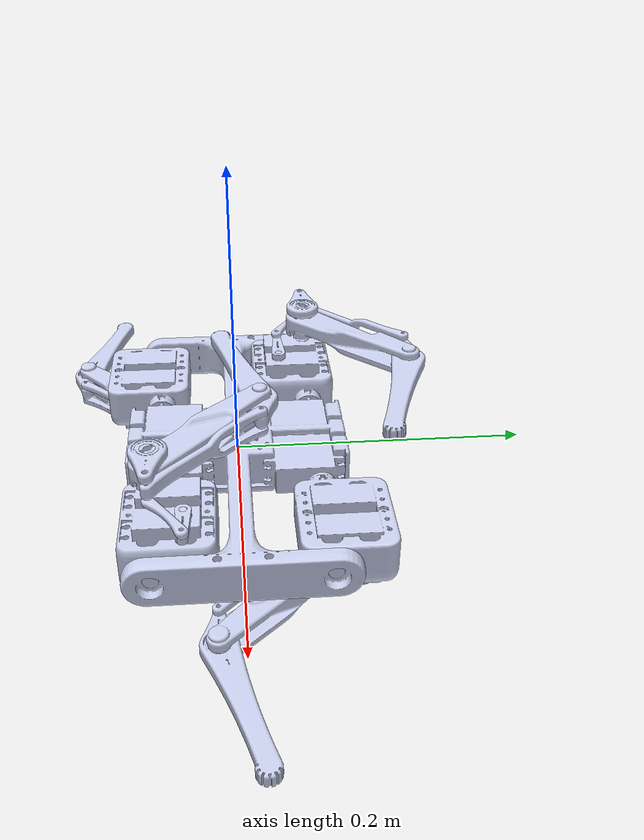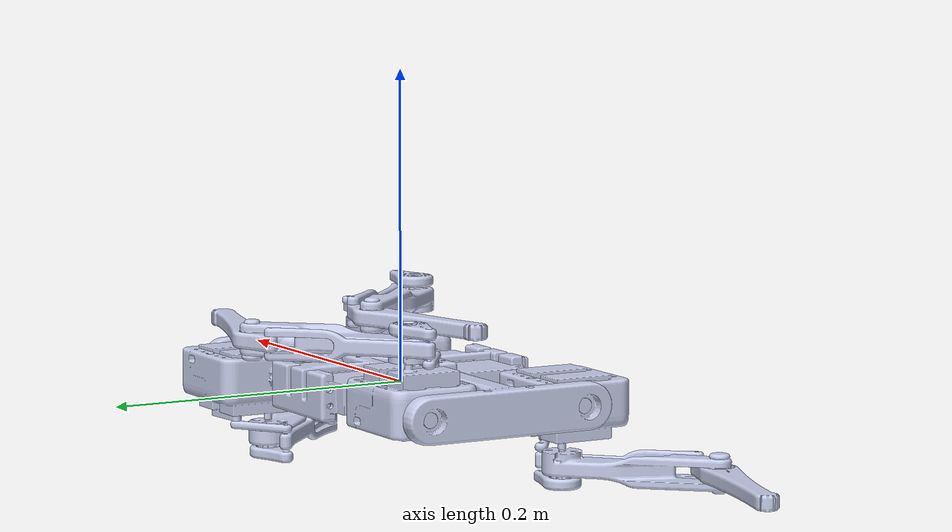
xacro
<?xml version="1.0" encoding="utf-8"?>

<robot xmlns:xacro="http://www.ros.org/wiki/xacro" name="vettar">
  <xacro:arg name="simulation_mode" default="false"/>
  <xacro:property name="is_sim" value="$(arg simulation_mode)"/>
  <link
    name="base_link">
    <inertial>
      <origin
        xyz="2.35110972218733E-08 -4.49082036696469E-08 -0.000139979272181373"
        rpy="0 0 0" />
      <mass
        value="0.396679023415945" />
      <inertia
        ixx="0.000363746686904449"
        ixy="-9.76609071073347E-09"
        ixz="3.48480589918157E-12"
        iyy="0.00104522627187434"
        iyz="-4.57941235308133E-10"
        izz="0.0013581782694226" />
    </inertial>
    <visual>
      <origin
        xyz="0 0 0"
        rpy="0 0 0" />
      <geometry>
        <mesh
          filename="package://vettar_description/meshes/base_link.STL" />
      </geometry>
      <material
        name="">
        <color
          rgba="0.792156862745098 0.819607843137255 0.933333333333333 1" />
      </material>
    </visual>
    <collision>
      <origin
        xyz="0 0 0"
        rpy="0 0 0" />
      <geometry>
        <mesh
          filename="package://vettar_description/meshes/base_link.STL" />
      </geometry>
    </collision>
  </link>
  <link
    name="shoulder_F_L">
    <inertial>
      <origin
        xyz="0.0466819869554319 0.00398419067271394 0.00997792256330394"
        rpy="0 0 0" />
      <mass
        value="0.119203480699899" />
      <inertia
        ixx="4.49008647458163E-05"
        ixy="-2.02804766608705E-08"
        ixz="-3.45414265562375E-06"
        iyy="4.39339436760174E-05"
        iyz="-3.33916966792789E-08"
        izz="2.39881913565821E-05" />
    </inertial>
    <visual>
      <origin
        xyz="0 0 0"
        rpy="0 0 0" />
      <geometry>
        <mesh
          filename="package://vettar_description/meshes/shoulder_F_L.STL" />
      </geometry>
      <material
        name="">
        <color
          rgba="0.792156862745098 0.819607843137255 0.933333333333333 1" />
      </material>
    </visual>
    <collision>
      <origin
        xyz="0 0 0"
        rpy="0 0 0" />
      <geometry>
        <mesh
          filename="package://vettar_description/meshes/shoulder_F_L.STL" />
      </geometry>
    </collision>
  </link>
  <joint
    name="F_L_0"
    type="revolute">
    <origin
      xyz="0.04685 0.05455 -5E-05"
      rpy="-1.5708 0 0" />
    <parent
      link="base_link" />
    <child
      link="shoulder_F_L" />
    <axis
      xyz="1 0 0" />
    <limit
      lower="0"
      upper="3.1416"
      effort="0"
      velocity="0" />
  </joint>
  <link
    name="thighs_F_L">
    <inertial>
      <origin
        xyz="0.0307867646905471 -0.000461376921627524 -0.030805340221158"
        rpy="0 0 0" />
      <mass
        value="0.0272931996215248" />
      <inertia
        ixx="1.40238605835704E-05"
        ixy="-2.68315513109657E-07"
        ixz="1.22583414772541E-05"
        iyy="2.63265482672728E-05"
        iyz="2.68517605735526E-07"
        izz="1.39166912790042E-05" />
    </inertial>
    <visual>
      <origin
        xyz="0 0 0"
        rpy="0 0 0" />
      <geometry>
        <mesh
          filename="package://vettar_description/meshes/thighs_F_L.STL" />
      </geometry>
      <material
        name="">
        <color
          rgba="0.792156862745098 0.819607843137255 0.933333333333333 1" />
      </material>
    </visual>
    <collision>
      <origin
        xyz="0 0 0"
        rpy="0 0 0" />
      <geometry>
        <mesh
          filename="package://vettar_description/meshes/thighs_F_L.STL" />
      </geometry>
    </collision>
  </link>
  <joint
    name="F_L_1"
    type="revolute">
    <origin
      xyz="0.0322 0.0423 0"
      rpy="0 0 0" />
    <parent
      link="shoulder_F_L" />
    <child
      link="thighs_F_L" />
    <axis
      xyz="0 1 0" />
    <limit
      lower="0"
      upper="3.1416"
      effort="0"
      velocity="0" />
  </joint>
  <link
    name="calf_F_L">
    <inertial>
      <origin
        xyz="0.0101406960018604 5.12585711612695E-05 -0.0334060796974647"
        rpy="0 0 0" />
      <mass
        value="0.0172535804140555" />
      <inertia
        ixx="1.77604626883055E-05"
        ixy="8.61708375886723E-09"
        ixz="4.41637781525403E-06"
        iyy="1.92140238293717E-05"
        iyz="-2.87034102494065E-08"
        izz="1.71187663900808E-06" />
    </inertial>
    <visual>
      <origin
        xyz="0 0 0"
        rpy="0 0 0" />
      <geometry>
        <mesh
          filename="package://vettar_description/meshes/calf_F_L.STL" />
      </geometry>
      <material
        name="">
        <color
          rgba="0.792156862745098 0.819607843137255 0.933333333333333 1" />
      </material>
    </visual>
    <collision>
      <origin
        xyz="0 0 0"
        rpy="0 0 0" />
      <geometry>
        <mesh
          filename="package://vettar_description/meshes/calf_F_L.STL" />
      </geometry>
    </collision>
  </link>
  <joint
    name="thighs_to_calf_F_L"
    type="continuous">
    <origin
      xyz="0.070711 0 -0.070711"
      rpy="0 -1.5708 0" />
    <parent
      link="thighs_F_L" />
    <child
      link="calf_F_L" />
    <axis
      xyz="0 1 0" />
  </joint>
  <link
    name="servo_arm_F_L">
    <inertial>
      <origin
        xyz="0 1.38777878078145E-17 0.0105381418028458"
        rpy="0 0 0" />
      <mass
        value="0.000975344106993151" />
      <inertia
        ixx="7.54540735330726E-08"
        ixy="1.16739122284923E-24"
        ixz="-2.5771099278853E-23"
        iyy="8.00240618361575E-08"
        iyz="3.31263426977485E-23"
        izz="7.84485504908246E-09" />
    </inertial>
    <visual>
      <origin
        xyz="0 0 0"
        rpy="0 0 0" />
      <geometry>
        <mesh
          filename="package://vettar_description/meshes/servo_arm_F_L.STL" />
      </geometry>
      <material
        name="">
        <color
          rgba="0.792156862745098 0.819607843137255 0.933333333333333 1" />
      </material>
    </visual>
    <collision>
      <origin
        xyz="0 0 0"
        rpy="0 0 0" />
      <geometry>
        <mesh
          filename="package://vettar_description/meshes/servo_arm_F_L.STL" />
      </geometry>
    </collision>
  </link>
  <joint
    name="F_L_2"
    type="revolute">
    <origin
      xyz="0.06205 0.02905 0.0204"
      rpy="0 -1.5708 0" />
    <parent
      link="shoulder_F_L" />
    <child
      link="servo_arm_F_L" />
    <axis
      xyz="0 1 0" />
    <limit
      lower="0"
      upper="3.1416"
      effort="0"
      velocity="0" />
  </joint>
  <link
    name="calf_ctrl_link_1_F_L">
    <inertial>
      <origin
        xyz="-0.018075 1.38777878078145E-17 0.000774877828140577"
        rpy="0 0 0" />
      <mass
        value="0.00111225029871878" />
      <inertia
        ixx="5.72356644536731E-09"
        ixy="1.42431891656477E-23"
        ixz="-1.23663501576677E-22"
        iyy="1.85407386292481E-07"
        iyz="7.68745190348468E-25"
        izz="1.8357729196152E-07" />
    </inertial>
    <visual>
      <origin
        xyz="0 0 0"
        rpy="0 0 0" />
      <geometry>
        <mesh
          filename="package://vettar_description/meshes/calf_ctrl_link_1_F_L.STL" />
      </geometry>
      <material
        name="">
        <color
          rgba="0.792156862745098 0.819607843137255 0.933333333333333 1" />
      </material>
    </visual>
    <collision>
      <origin
        xyz="0 0 0"
        rpy="0 0 0" />
      <geometry>
        <mesh
          filename="package://vettar_description/meshes/calf_ctrl_link_1_F_L.STL" />
      </geometry>
    </collision>
  </link>
  <joint
    name="servo_arm_to_calf_ctrl_link_1_F_L"
    type="revolute">
    <origin
      xyz="0 0.00475 0.025"
      rpy="0 0.9724 0" />
    <parent
      link="servo_arm_F_L" />
    <child
      link="calf_ctrl_link_1_F_L" />
    <axis
      xyz="0 1 0" />
    <limit
      lower="0"
      upper="3.1416"
      effort="0"
      velocity="0" />
     <mimic
      joint="F_L_2"
      multiplier="-1"
      offset="0" />
  </joint>
  <link
    name="calf_ctrl_b_F_L">
    <inertial>
      <origin
        xyz="-4.85722573273506E-17 3.20640684062512E-05 0.00688666553553138"
        rpy="0 0 0" />
      <mass
        value="0.00354028959618972" />
      <inertia
        ixx="3.45528486612269E-07"
        ixy="-1.84808305160043E-22"
        ixz="1.46369065700323E-20"
        iyy="4.52480557794333E-07"
        iyz="-3.32682143979103E-09"
        izz="1.30553485579809E-07" />
    </inertial>
    <visual>
      <origin
        xyz="0 0 0"
        rpy="0 0 0" />
      <geometry>
        <mesh
          filename="package://vettar_description/meshes/calf_ctrl_b_F_L.STL" />
      </geometry>
      <material
        name="">
        <color
          rgba="0.792156862745098 0.819607843137255 0.933333333333333 1" />
      </material>
    </visual>
    <collision>
      <origin
        xyz="0 0 0"
        rpy="0 0 0" />
      <geometry>
        <mesh
          filename="package://vettar_description/meshes/calf_ctrl_b_F_L.STL" />
      </geometry>
    </collision>
  </link>
  <joint
    name="shoulder_to_calf_ctrl_b_F_L"
    type="revolute">
    <origin
      xyz="0.0322 0.0523 0"
      rpy="0 -1.5708 0" />
    <parent
      link="shoulder_F_L" />
    <child
      link="calf_ctrl_b_F_L" />
    <axis
      xyz="0 1 0" />
    <limit
      lower="0"
      upper="3.1416"
      effort="0"
      velocity="0" />
    <mimic
      joint="F_L_2"
      multiplier="1"
      offset="0" />
  </joint>
  <link
    name="calf_ctrl_link_2_F_L">
    <inertial>
      <origin
        xyz="0.00111901337001399 2.09060393996374E-10 -0.0500778792496259"
        rpy="0 0 0" />
      <mass
        value="0.00561911163130325" />
      <inertia
        ixx="5.89454562373125E-06"
        ixy="6.73552520504852E-15"
        ixz="6.42821435707171E-10"
        iyy="5.75704319182989E-06"
        iyz="-1.84959192503532E-15"
        izz="1.70411118036785E-07" />
    </inertial>
    <visual>
      <origin
        xyz="0 0 0"
        rpy="0 0 0" />
      <geometry>
        <mesh
          filename="package://vettar_description/meshes/calf_ctrl_link_2_F_L.STL" />
      </geometry>
      <material
        name="">
        <color
          rgba="0.792156862745098 0.819607843137255 0.933333333333333 1" />
      </material>
    </visual>
    <collision>
      <origin
        xyz="0 0 0"
        rpy="0 0 0" />
      <geometry>
        <mesh
          filename="package://vettar_description/meshes/calf_ctrl_link_2_F_L.STL" />
      </geometry>
    </collision>
  </link>
  <joint
    name="calf_ctrl_b_to_link_2_F_L"
    type="continuous">
    <origin
      xyz="0 -0.010003 0.025"
      rpy="0 0.7854 0" />
    <parent
      link="calf_ctrl_b_F_L" />
    <child
      link="calf_ctrl_link_2_F_L" />
    <axis
      xyz="0 1 0" />
  </joint>
  <link
    name="shoulder_F_R">
    <inertial>
      <origin
        xyz="0.0467094731756891 -0.00398417940754411 0.00997767995559429"
        rpy="0 0 0" />
      <mass
        value="0.11920530580515" />
      <inertia
        ixx="4.49016149267523E-05"
        ixy="2.03939054156098E-08"
        ixz="-3.45413247787102E-06"
        iyy="4.39346233462038E-05"
        iyz="3.31134798240669E-08"
        izz="2.39882253835948E-05" />
    </inertial>
    <visual>
      <origin
        xyz="0 0 0"
        rpy="0 0 0" />
      <geometry>
        <mesh
          filename="package://vettar_description/meshes/shoulder_F_R.STL" />
      </geometry>
      <material
        name="">
        <color
          rgba="0.792156862745098 0.819607843137255 0.933333333333333 1" />
      </material>
    </visual>
    <collision>
      <origin
        xyz="0 0 0"
        rpy="0 0 0" />
      <geometry>
        <mesh
          filename="package://vettar_description/meshes/shoulder_F_R.STL" />
      </geometry>
    </collision>
  </link>
  <joint
    name="F_R_3"
    type="revolute">
    <origin
      xyz="0.04685 -0.05455 -5E-05"
      rpy="-1.5708 0 0" />
    <parent
      link="base_link" />
    <child
      link="shoulder_F_R" />
    <axis
      xyz="1 0 0" />
    <limit
      lower="0"
      upper="3.1416"
      effort="0"
      velocity="0" />
  </joint>
  <link
    name="thighs_F_R">
    <inertial>
      <origin
        xyz="-0.0307867726045708 0.000461376972766436 0.0308053238078066"
        rpy="0 0 0" />
      <mass
        value="0.0272931837872823" />
      <inertia
        ixx="1.40238518752997E-05"
        ixy="-2.68316564692751E-07"
        ixz="1.22583471675323E-05"
        iyy="2.63265110795453E-05"
        iyz="2.68519518042869E-07"
        izz="1.39166609155692E-05" />
    </inertial>
    <visual>
      <origin
        xyz="0 0 0"
        rpy="0 0 0" />
      <geometry>
        <mesh
          filename="package://vettar_description/meshes/thighs_F_R.STL" />
      </geometry>
      <material
        name="">
        <color
          rgba="0.792156862745098 0.819607843137255 0.933333333333333 1" />
      </material>
    </visual>
    <collision>
      <origin
        xyz="0 0 0"
        rpy="0 0 0" />
      <geometry>
        <mesh
          filename="package://vettar_description/meshes/thighs_F_R.STL" />
      </geometry>
    </collision>
  </link>
  <joint
    name="F_R_4"
    type="revolute">
    <origin
      xyz="0.03225 -0.0423 0"
      rpy="0 0 0" />
    <parent
      link="shoulder_F_R" />
    <child
      link="thighs_F_R" />
    <axis
      xyz="0 -1 0" />
    <limit
      lower="0"
      upper="3.1416"
      effort="0"
      velocity="0" />
  </joint>
  <link
    name="calf_F_R">
    <inertial>
      <origin
        xyz="0.010140696002164 -5.12587645191687E-05 -0.0334060796979923"
        rpy="0 0 0" />
      <mass
        value="0.0172535804143419" />
      <inertia
        ixx="1.77604626882643E-05"
        ixy="-8.61702362435681E-09"
        ixz="4.41637781537991E-06"
        iyy="1.92140238297111E-05"
        iyz="2.87032981478641E-08"
        izz="1.71187663873301E-06" />
    </inertial>
    <visual>
      <origin
        xyz="0 0 0"
        rpy="0 0 0" />
      <geometry>
        <mesh
          filename="package://vettar_description/meshes/calf_F_R.STL" />
      </geometry>
      <material
        name="">
        <color
          rgba="0.792156862745098 0.819607843137255 0.933333333333333 1" />
      </material>
    </visual>
    <collision>
      <origin
        xyz="0 0 0"
        rpy="0 0 0" />
      <geometry>
        <mesh
          filename="package://vettar_description/meshes/calf_F_R.STL" />
      </geometry>
    </collision>
  </link>
  <joint
    name="thighs_to_calf_F_R"
    type="continuous">
    <origin
      xyz="-0.070711 0 0.070711"
      rpy="0 1.5708 0" />
    <parent
      link="thighs_F_R" />
    <child
      link="calf_F_R" />
    <axis
      xyz="0 -1 0" />
  </joint>
  <link
    name="servo_arm_F_R">
    <inertial>
      <origin
        xyz="-6.93889390390723E-18 2.77555756156289E-17 0.0105381418028457"
        rpy="0 0 0" />
      <mass
        value="0.000975344106993152" />
      <inertia
        ixx="7.54540735330729E-08"
        ixy="-1.08761864879061E-24"
        ixz="5.12597524809289E-23"
        iyy="8.00240618361578E-08"
        iyz="-6.10438430796542E-23"
        izz="7.84485504908247E-09" />
    </inertial>
    <visual>
      <origin
        xyz="0 0 0"
        rpy="0 0 0" />
      <geometry>
        <mesh
          filename="package://vettar_description/meshes/servo_arm_F_R.STL" />
      </geometry>
      <material
        name="">
        <color
          rgba="0.792156862745098 0.819607843137255 0.933333333333333 1" />
      </material>
    </visual>
    <collision>
      <origin
        xyz="0 0 0"
        rpy="0 0 0" />
      <geometry>
        <mesh
          filename="package://vettar_description/meshes/servo_arm_F_R.STL" />
      </geometry>
    </collision>
  </link>
  <joint
    name="F_R_5"
    type="revolute">
    <origin
      xyz="0.0621 -0.02905 0.0204"
      rpy="0 1.5708 0" />
    <parent
      link="shoulder_F_R" />
    <child
      link="servo_arm_F_R" />
    <axis
      xyz="0 -1 0" />
    <limit
      lower="0"
      upper="3.1416"
      effort="0"
      velocity="0" />
  </joint>
  <link
    name="calf_ctrl_link_1_F_R">
    <inertial>
      <origin
        xyz="-0.018075 -2.77555756156289E-17 0.000774877828140508"
        rpy="0 0 0" />
      <mass
        value="0.00111225029871878" />
      <inertia
        ixx="5.72356644536755E-09"
        ixy="-2.26003951040413E-23"
        ixz="1.13737334226045E-23"
        iyy="1.85407386292482E-07"
        iyz="-2.02406696460792E-24"
        izz="1.8357729196152E-07" />
    </inertial>
    <visual>
      <origin
        xyz="0 0 0"
        rpy="0 0 0" />
      <geometry>
        <mesh
          filename="package://vettar_description/meshes/calf_ctrl_link_1_F_R.STL" />
      </geometry>
      <material
        name="">
        <color
          rgba="0.792156862745098 0.819607843137255 0.933333333333333 1" />
      </material>
    </visual>
    <collision>
      <origin
        xyz="0 0 0"
        rpy="0 0 0" />
      <geometry>
        <mesh
          filename="package://vettar_description/meshes/calf_ctrl_link_1_F_R.STL" />
      </geometry>
    </collision>
  </link>
  <joint
    name="servo_arm_to_calf_ctrl_link_1_F_R"
    type="revolute">
    <origin
      xyz="0 -0.00475 0.025"
      rpy="0 -2.1734 0" />
    <parent
      link="servo_arm_F_R" />
    <child
      link="calf_ctrl_link_1_F_R" />
    <axis
      xyz="0 -1 0" />
    <limit
      lower="0"
      upper="3.1416"
      effort="0"
      velocity="0" />
    <mimic
      joint="F_R_5"
      multiplier="-1"
      offset="0" />
  </joint>
  <link
    name="calf_ctrl_b_F_R">
    <inertial>
      <origin
        xyz="3.05311331771918E-16 -3.20640684061402E-05 0.00688666553553122"
        rpy="0 0 0" />
      <mass
        value="0.00354028959618971" />
      <inertia
        ixx="3.45528486612264E-07"
        ixy="-7.8896407257504E-24"
        ixz="-6.91787917647197E-21"
        iyy="4.52480557794311E-07"
        iyz="3.32682143979124E-09"
        izz="1.30553485579793E-07" />
    </inertial>
    <visual>
      <origin
        xyz="0 0 0"
        rpy="0 0 0" />
      <geometry>
        <mesh
          filename="package://vettar_description/meshes/calf_ctrl_b_F_R.STL" />
      </geometry>
      <material
        name="">
        <color
          rgba="0.792156862745098 0.819607843137255 0.933333333333333 1" />
      </material>
    </visual>
    <collision>
      <origin
        xyz="0 0 0"
        rpy="0 0 0" />
      <geometry>
        <mesh
          filename="package://vettar_description/meshes/calf_ctrl_b_F_R.STL" />
      </geometry>
    </collision>
  </link>
  <joint
    name="shoulder_to_calf_ctrl_b_F_R"
    type="revolute">
    <origin
      xyz="0.03225 -0.0523 0"
      rpy="0 1.5708 0" />
    <parent
      link="shoulder_F_R" />
    <child
      link="calf_ctrl_b_F_R" />
    <axis
      xyz="0 -1 0" />
    <limit
      lower="0"
      upper="3.1416"
      effort="0"
      velocity="0" />
    <mimic
      joint="F_R_5"
      multiplier="1"
      offset="0" />
  </joint>
  <link
    name="calf_ctrl_link_2_F_R">
    <inertial>
      <origin
        xyz="0.0011190133700149 2.09061323808157E-10 -0.0500778792496255"
        rpy="0 0 0" />
      <mass
        value="0.00561911163130325" />
      <inertia
        ixx="5.89454562373125E-06"
        ixy="6.73552516750252E-15"
        ixz="6.42821435709857E-10"
        iyy="5.75704319182989E-06"
        iyz="-1.84959266424862E-15"
        izz="1.7041111803679E-07" />
    </inertial>
    <visual>
      <origin
        xyz="0 0 0"
        rpy="0 0 0" />
      <geometry>
        <mesh
          filename="package://vettar_description/meshes/calf_ctrl_link_2_F_R.STL" />
      </geometry>
      <material
        name="">
        <color
          rgba="0.792156862745098 0.819607843137255 0.933333333333333 1" />
      </material>
    </visual>
    <collision>
      <origin
        xyz="0 0 0"
        rpy="0 0 0" />
      <geometry>
        <mesh
          filename="package://vettar_description/meshes/calf_ctrl_link_2_F_R.STL" />
      </geometry>
    </collision>
  </link>
  <joint
    name="calf_ctrl_b_to_link_2_F_R"
    type="continuous">
    <origin
      xyz="0 0.010227 0.025"
      rpy="0 0.7854 0" />
    <parent
      link="calf_ctrl_b_F_R" />
    <child
      link="calf_ctrl_link_2_F_R" />
    <axis
      xyz="0 -1 0" />
  </joint>
  <link
    name="shoulder_B_L">
    <inertial>
      <origin
        xyz="-0.0466815369109793 0.00398417944209506 0.00997768017568306"
        rpy="0 0 0" />
      <mass
        value="0.119205302366461" />
      <inertia
        ixx="4.4901614342157E-05"
        ixy="2.03938148595843E-08"
        ixz="3.45413063891719E-06"
        iyy="4.3934620230579E-05"
        iyz="-3.31136750285268E-08"
        izz="2.39882229480932E-05" />
    </inertial>
    <visual>
      <origin
        xyz="0 0 0"
        rpy="0 0 0" />
      <geometry>
        <mesh
          filename="package://vettar_description/meshes/shoulder_B_L.STL" />
      </geometry>
      <material
        name="">
        <color
          rgba="0.792156862745098 0.819607843137255 0.933333333333333 1" />
      </material>
    </visual>
    <collision>
      <origin
        xyz="0 0 0"
        rpy="0 0 0" />
      <geometry>
        <mesh
          filename="package://vettar_description/meshes/shoulder_B_L.STL" />
      </geometry>
    </collision>
  </link>
  <joint
    name="B_L_6"
    type="revolute">
    <origin
      xyz="-0.04685 0.05455 -5E-05"
      rpy="1.5708 0 0" />
    <parent
      link="base_link" />
    <child
      link="shoulder_B_L" />
    <axis
      xyz="-1 0 0" />
    <limit
      lower="0"
      upper="3.1416"
      effort="0"
      velocity="0" />
  </joint>
  <link
    name="thighs_B_L">
    <inertial>
      <origin
        xyz="0.030786764690059 -0.000461376921627038 -0.0308053402205603"
        rpy="0 0 0" />
      <mass
        value="0.0272931996215124" />
      <inertia
        ixx="1.40238498403544E-05"
        ixy="-2.68315513164588E-07"
        ixz="1.22583467619844E-05"
        iyy="2.63265267810395E-05"
        iyz="2.68517605812552E-07"
        izz="1.39166805359863E-05" />
    </inertial>
    <visual>
      <origin
        xyz="0 0 0"
        rpy="0 0 0" />
      <geometry>
        <mesh
          filename="package://vettar_description/meshes/thighs_B_L.STL" />
      </geometry>
      <material
        name="">
        <color
          rgba="0.792156862745098 0.819607843137255 0.933333333333333 1" />
      </material>
    </visual>
    <collision>
      <origin
        xyz="0 0 0"
        rpy="0 0 0" />
      <geometry>
        <mesh
          filename="package://vettar_description/meshes/thighs_B_L.STL" />
      </geometry>
    </collision>
  </link>
  <joint
    name="B_L_7"
    type="revolute">
    <origin
      xyz="-0.06205 0.0423 0"
      rpy="0 0 0" />
    <parent
      link="shoulder_B_L" />
    <child
      link="thighs_B_L" />
    <axis
      xyz="0 1 0" />
    <limit
      lower="0"
      upper="3.1416"
      effort="0"
      velocity="0" />
  </joint>
  <link
    name="calf_B_L">
    <inertial>
      <origin
        xyz="0.0101406960018602 5.12585711612001E-05 -0.0334060796974651"
        rpy="0 0 0" />
      <mass
        value="0.0172535804140553" />
      <inertia
        ixx="1.77604626883045E-05"
        ixy="8.6170837589074E-09"
        ixz="4.41637781525641E-06"
        iyy="1.92140238293725E-05"
        iyz="-2.87034102494069E-08"
        izz="1.71187663900993E-06" />
    </inertial>
    <visual>
      <origin
        xyz="0 0 0"
        rpy="0 0 0" />
      <geometry>
        <mesh
          filename="package://vettar_description/meshes/calf_B_L.STL" />
      </geometry>
      <material
        name="">
        <color
          rgba="0.792156862745098 0.819607843137255 0.933333333333333 1" />
      </material>
    </visual>
    <collision>
      <origin
        xyz="0 0 0"
        rpy="0 0 0" />
      <geometry>
        <mesh
          filename="package://vettar_description/meshes/calf_B_L.STL" />
      </geometry>
    </collision>
  </link>
  <joint
    name="thighs_to_calf_B_L"
    type="continuous">
    <origin
      xyz="0.070711 0 -0.070711"
      rpy="0 -1.5708 0" />
    <parent
      link="thighs_B_L" />
    <child
      link="calf_B_L" />
    <axis
      xyz="0 1 0" />
  </joint>
  <link
    name="servo_arm_B_L">
    <inertial>
      <origin
        xyz="3.46944695195361E-18 0 0.0105381418028457"
        rpy="0 0 0" />
      <mass
        value="0.000975344106993152" />
      <inertia
        ixx="7.54540735330728E-08"
        ixy="5.61001260621498E-24"
        ixz="-2.51863031739294E-23"
        iyy="8.00240618361577E-08"
        iyz="-1.14098922559324E-23"
        izz="7.84485504908248E-09" />
    </inertial>
    <visual>
      <origin
        xyz="0 0 0"
        rpy="0 0 0" />
      <geometry>
        <mesh
          filename="package://vettar_description/meshes/servo_arm_B_L.STL" />
      </geometry>
      <material
        name="">
        <color
          rgba="0.792156862745098 0.819607843137255 0.933333333333333 1" />
      </material>
    </visual>
    <collision>
      <origin
        xyz="0 0 0"
        rpy="0 0 0" />
      <geometry>
        <mesh
          filename="package://vettar_description/meshes/servo_arm_B_L.STL" />
      </geometry>
    </collision>
  </link>
  <joint
    name="B_L_8"
    type="revolute">
    <origin
      xyz="-0.0322 0.02905 0.0204"
      rpy="0 -1.5708 0" />
    <parent
      link="shoulder_B_L" />
    <child
      link="servo_arm_B_L" />
    <axis
      xyz="0 1 0" />
    <limit
      lower="0"
      upper="3.1416"
      effort="0"
      velocity="0" />
  </joint>
  <link
    name="calf_ctrl_link_1_B_L">
    <inertial>
      <origin
        xyz="-0.018075 0 0.000774877828140558"
        rpy="0 0 0" />
      <mass
        value="0.00111225029871879" />
      <inertia
        ixx="5.72356644536615E-09"
        ixy="7.05013356582078E-24"
        ixz="4.1565825780791E-23"
        iyy="1.85407386292481E-07"
        iyz="-3.2917035161866E-24"
        izz="1.8357729196152E-07" />
    </inertial>
    <visual>
      <origin
        xyz="0 0 0"
        rpy="0 0 0" />
      <geometry>
        <mesh
          filename="package://vettar_description/meshes/calf_ctrl_link_1_B_L.STL" />
      </geometry>
      <material
        name="">
        <color
          rgba="0.792156862745098 0.819607843137255 0.933333333333333 1" />
      </material>
    </visual>
    <collision>
      <origin
        xyz="0 0 0"
        rpy="0 0 0" />
      <geometry>
        <mesh
          filename="package://vettar_description/meshes/calf_ctrl_link_1_B_L.STL" />
      </geometry>
    </collision>
  </link>
  <joint
    name="servo_arm_to_calf_ctrl_link_1_B_L"
    type="revolute">
    <origin
      xyz="0 0.00475 0.025"
      rpy="0 0.9724 0" />
    <parent
      link="servo_arm_B_L" />
    <child
      link="calf_ctrl_link_1_B_L" />
    <axis
      xyz="0 1 0" />
    <limit
      lower="0"
      upper="3.1416"
      effort="0"
      velocity="0" />
    <mimic
      joint="B_L_8"
      multiplier="-1"
      offset="0" />
  </joint>
  <link
    name="calf_ctrl_b_B_L">
    <inertial>
      <origin
        xyz="-2.91433543964104E-16 3.20640684059459E-05 0.00688666553553139"
        rpy="0 0 0" />
      <mass
        value="0.00354028959618972" />
      <inertia
        ixx="3.45528486612273E-07"
        ixy="-8.92084761984018E-23"
        ixz="7.73645208907431E-21"
        iyy="4.52480557794327E-07"
        iyz="-3.32682143979098E-09"
        izz="1.30553485579799E-07" />
    </inertial>
    <visual>
      <origin
        xyz="0 0 0"
        rpy="0 0 0" />
      <geometry>
        <mesh
          filename="package://vettar_description/meshes/calf_ctrl_b_B_L.STL" />
      </geometry>
      <material
        name="">
        <color
          rgba="0.792156862745098 0.819607843137255 0.933333333333333 1" />
      </material>
    </visual>
    <collision>
      <origin
        xyz="0 0 0"
        rpy="0 0 0" />
      <geometry>
        <mesh
          filename="package://vettar_description/meshes/calf_ctrl_b_B_L.STL" />
      </geometry>
    </collision>
  </link>
  <joint
    name="shoulder_to_calf_ctrl_b_B_L"
    type="revolute">
    <origin
      xyz="-0.06205 0.0523 0"
      rpy="0 -1.5708 0" />
    <parent
      link="shoulder_B_L" />
    <child
      link="calf_ctrl_b_B_L" />
    <axis
      xyz="0 1 0" />
    <limit
      lower="0"
      upper="3.1416"
      effort="0"
      velocity="0" />
    <mimic
      joint="B_L_8"
      multiplier="1"
      offset="0" />
  </joint>
  <link
    name="calf_ctrl_link_2_B_L">
    <inertial>
      <origin
        xyz="0.00111901337001398 2.09060407874162E-10 -0.0500778792496259"
        rpy="0 0 0" />
      <mass
        value="0.00561911163130327" />
      <inertia
        ixx="5.89454562373127E-06"
        ixy="6.73552536411969E-15"
        ixz="6.42821435708838E-10"
        iyy="5.75704319182991E-06"
        iyz="-1.84959224942376E-15"
        izz="1.70411118036791E-07" />
    </inertial>
    <visual>
      <origin
        xyz="0 0 0"
        rpy="0 0 0" />
      <geometry>
        <mesh
          filename="package://vettar_description/meshes/calf_ctrl_link_2_B_L.STL" />
      </geometry>
      <material
        name="">
        <color
          rgba="0.792156862745098 0.819607843137255 0.933333333333333 1" />
      </material>
    </visual>
    <collision>
      <origin
        xyz="0 0 0"
        rpy="0 0 0" />
      <geometry>
        <mesh
          filename="package://vettar_description/meshes/calf_ctrl_link_2_B_L.STL" />
      </geometry>
    </collision>
  </link>
  <joint
    name="calf_ctrl_b_to_link_2_B_L"
    type="continuous">
    <origin
      xyz="0 -0.010003 0.025"
      rpy="0 0.7854 0" />
    <parent
      link="calf_ctrl_b_B_L" />
    <child
      link="calf_ctrl_link_2_B_L" />
    <axis
      xyz="0 1 0" />
  </joint>
  <link
    name="shoulder_B_R">
    <inertial>
      <origin
        xyz="-0.0466959554589567 -0.00398419169544706 0.00997792116955153"
        rpy="0 0 0" />
      <mass
        value="0.119203475597298" />
      <inertia
        ixx="4.49008618297834E-05"
        ixy="-2.02803179924207E-08"
        ixz="3.45414100329332E-06"
        iyy="4.39339407938332E-05"
        iyz="3.33912792525491E-08"
        izz="2.39881877030711E-05" />
    </inertial>
    <visual>
      <origin
        xyz="0 0 0"
        rpy="0 0 0" />
      <geometry>
        <mesh
          filename="package://vettar_description/meshes/shoulder_B_R.STL" />
      </geometry>
      <material
        name="">
        <color
          rgba="0.792156862745098 0.819607843137255 0.933333333333333 1" />
      </material>
    </visual>
    <collision>
      <origin
        xyz="0 0 0"
        rpy="0 0 0" />
      <geometry>
        <mesh
          filename="package://vettar_description/meshes/shoulder_B_R.STL" />
      </geometry>
    </collision>
  </link>
  <joint
    name="B_R_9"
    type="revolute">
    <origin
      xyz="-0.04685 -0.05455 -5E-05"
      rpy="1.5708 0 0" />
    <parent
      link="base_link" />
    <child
      link="shoulder_B_R" />
    <axis
      xyz="-1 0 0" />
    <limit
      lower="0"
      upper="3.1416"
      effort="0"
      velocity="0" />
  </joint>
  <link
    name="thighs_B_R">
    <inertial>
      <origin
        xyz="-0.0307867726053932 0.000461376972888131 0.0308053238073376"
        rpy="0 0 0" />
      <mass
        value="0.0272931837886617" />
      <inertia
        ixx="1.40238538562877E-05"
        ixy="-2.68316564541122E-07"
        ixz="1.22583446631845E-05"
        iyy="2.63265150394118E-05"
        iyz="2.68519518066761E-07"
        izz="1.39166628945209E-05" />
    </inertial>
    <visual>
      <origin
        xyz="0 0 0"
        rpy="0 0 0" />
      <geometry>
        <mesh
          filename="package://vettar_description/meshes/thighs_B_R.STL" />
      </geometry>
      <material
        name="">
        <color
          rgba="0.792156862745098 0.819607843137255 0.933333333333333 1" />
      </material>
    </visual>
    <collision>
      <origin
        xyz="0 0 0"
        rpy="0 0 0" />
      <geometry>
        <mesh
          filename="package://vettar_description/meshes/thighs_B_R.STL" />
      </geometry>
    </collision>
  </link>
  <joint
    name="B_R_10"
    type="revolute">
    <origin
      xyz="-0.06205 -0.0423 0"
      rpy="0 0 0" />
    <parent
      link="shoulder_B_R" />
    <child
      link="thighs_B_R" />
    <axis
      xyz="0 -1 0" />
    <limit
      lower="0"
      upper="3.1416"
      effort="0"
      velocity="0" />
  </joint>
  <link
    name="calf_B_R">
    <inertial>
      <origin
        xyz="0.0101406960021609 -5.12587645200985E-05 -0.0334060796979923"
        rpy="0 0 0" />
      <mass
        value="0.0172535804143414" />
      <inertia
        ixx="1.77604626882642E-05"
        ixy="-8.61702362435667E-09"
        ixz="4.41637781538056E-06"
        iyy="1.92140238297068E-05"
        iyz="2.8703298147857E-08"
        izz="1.71187663872884E-06" />
    </inertial>
    <visual>
      <origin
        xyz="0 0 0"
        rpy="0 0 0" />
      <geometry>
        <mesh
          filename="package://vettar_description/meshes/calf_B_R.STL" />
      </geometry>
      <material
        name="">
        <color
          rgba="0.792156862745098 0.819607843137255 0.933333333333333 1" />
      </material>
    </visual>
    <collision>
      <origin
        xyz="0 0 0"
        rpy="0 0 0" />
      <geometry>
        <mesh
          filename="package://vettar_description/meshes/calf_B_R.STL" />
      </geometry>
    </collision>
  </link>
  <joint
    name="thighs_to_calf_B_R"
    type="continuous">
    <origin
      xyz="-0.070711 0 0.070711"
      rpy="0 1.5708 0" />
    <parent
      link="thighs_B_R" />
    <child
      link="calf_B_R" />
    <axis
      xyz="0 -1 0" />
  </joint>
  <link
    name="servo_arm_B_R">
    <inertial>
      <origin
        xyz="-1.38777878078145E-17 -1.38777878078145E-17 0.0105381418028458"
        rpy="0 0 0" />
      <mass
        value="0.000975344106993151" />
      <inertia
        ixx="7.54540735330726E-08"
        ixy="-2.04783668548393E-26"
        ixz="5.60770294174133E-23"
        iyy="8.00240618361575E-08"
        iyz="2.38073259914569E-23"
        izz="7.84485504908246E-09" />
    </inertial>
    <visual>
      <origin
        xyz="0 0 0"
        rpy="0 0 0" />
      <geometry>
        <mesh
          filename="package://vettar_description/meshes/servo_arm_B_R.STL" />
      </geometry>
      <material
        name="">
        <color
          rgba="0.792156862745098 0.819607843137255 0.933333333333333 1" />
      </material>
    </visual>
    <collision>
      <origin
        xyz="0 0 0"
        rpy="0 0 0" />
      <geometry>
        <mesh
          filename="package://vettar_description/meshes/servo_arm_B_R.STL" />
      </geometry>
    </collision>
  </link>
  <joint
    name="B_R_11"
    type="revolute">
    <origin
      xyz="-0.03225 -0.02905 0.0204"
      rpy="0 1.5708 0" />
    <parent
      link="shoulder_B_R" />
    <child
      link="servo_arm_B_R" />
    <axis
      xyz="0 -1 0" />
    <limit
      lower="0"
      upper="3.1416"
      effort="0"
      velocity="0" />
  </joint>
  <link
    name="calf_ctrl_link_1_B_R">
    <inertial>
      <origin
        xyz="-0.018075 0 0.000774877828140549"
        rpy="0 0 0" />
      <mass
        value="0.00111225029871878" />
      <inertia
        ixx="5.72356644536696E-09"
        ixy="1.24626241397099E-23"
        ixz="-2.48154183765846E-24"
        iyy="1.8540738629248E-07"
        iyz="2.02017107427188E-23"
        izz="1.83577291961519E-07" />
    </inertial>
    <visual>
      <origin
        xyz="0 0 0"
        rpy="0 0 0" />
      <geometry>
        <mesh
          filename="package://vettar_description/meshes/calf_ctrl_link_1_B_R.STL" />
      </geometry>
      <material
        name="">
        <color
          rgba="0.792156862745098 0.819607843137255 0.933333333333333 1" />
      </material>
    </visual>
    <collision>
      <origin
        xyz="0 0 0"
        rpy="0 0 0" />
      <geometry>
        <mesh
          filename="package://vettar_description/meshes/calf_ctrl_link_1_B_R.STL" />
      </geometry>
    </collision>
  </link>
  <joint
    name="servo_arm_to_calf_ctrl_link_1_B_R"
    type="revolute">
    <origin
      xyz="0 -0.00475 0.025"
      rpy="0 -2.1734 0" />
    <parent
      link="servo_arm_B_R" />
    <child
      link="calf_ctrl_link_1_B_R" />
    <axis
      xyz="0 -1 0" />
    <limit
      lower="0"
      upper="3.1416"
      effort="0"
      velocity="0" />
    <mimic
      joint="B_R_11"
      multiplier="-1"
      offset="0" />
  </joint>
  <link
    name="calf_ctrl_b_B_R">
    <inertial>
      <origin
        xyz="0 -3.20640684061957E-05 0.00688666553553131"
        rpy="0 0 0" />
      <mass
        value="0.00354028959618971" />
      <inertia
        ixx="3.45528486612257E-07"
        ixy="1.95488982426395E-22"
        ixz="-1.76968389214613E-20"
        iyy="4.52480557794315E-07"
        iyz="3.32682143979103E-09"
        izz="1.30553485579803E-07" />
    </inertial>
    <visual>
      <origin
        xyz="0 0 0"
        rpy="0 0 0" />
      <geometry>
        <mesh
          filename="package://vettar_description/meshes/calf_ctrl_b_B_R.STL" />
      </geometry>
      <material
        name="">
        <color
          rgba="0.792156862745098 0.819607843137255 0.933333333333333 1" />
      </material>
    </visual>
    <collision>
      <origin
        xyz="0 0 0"
        rpy="0 0 0" />
      <geometry>
        <mesh
          filename="package://vettar_description/meshes/calf_ctrl_b_B_R.STL" />
      </geometry>
    </collision>
  </link>
  <joint
    name="shoulder_to_calf_ctrl_b_B_R"
    type="revolute">
    <origin
      xyz="-0.06205 -0.0523 0"
      rpy="0 1.5708 0" />
    <parent
      link="shoulder_B_R" />
    <child
      link="calf_ctrl_b_B_R" />
    <axis
      xyz="0 -1 0" />
    <limit
      lower="0"
      upper="3.1416"
      effort="0"
      velocity="0" />
    <mimic
      joint="B_R_11"
      multiplier="1"
      offset="0" />
  </joint>
  <link
    name="calf_ctrl_link_2_B_R">
    <inertial>
      <origin
        xyz="0.00111901337001404 2.09060407874162E-10 -0.050077879249626"
        rpy="0 0 0" />
      <mass
        value="0.00561911163130324" />
      <inertia
        ixx="5.89454562373123E-06"
        ixy="6.73552512083439E-15"
        ixz="6.42821435710546E-10"
        iyy="5.75704319182986E-06"
        iyz="-1.84959263472647E-15"
        izz="1.70411118036771E-07" />
    </inertial>
    <visual>
      <origin
        xyz="0 0 0"
        rpy="0 0 0" />
      <geometry>
        <mesh
          filename="package://vettar_description/meshes/calf_ctrl_link_2_B_R.STL" />
      </geometry>
      <material
        name="">
        <color
          rgba="0.792156862745098 0.819607843137255 0.933333333333333 1" />
      </material>
    </visual>
    <collision>
      <origin
        xyz="0 0 0"
        rpy="0 0 0" />
      <geometry>
        <mesh
          filename="package://vettar_description/meshes/calf_ctrl_link_2_B_R.STL" />
      </geometry>
    </collision>
  </link>
  <joint
    name="calf_ctrl_b_to_link_2_B_R"
    type="continuous">
    <origin
      xyz="0 0.010227 0.025"
      rpy="0 0.7854 0" />
    <parent
      link="calf_ctrl_b_B_R" />
    <child
      link="calf_ctrl_link_2_B_R" />
    <axis
      xyz="0 -1 0" />
  </joint>

  <!-- ros2_control 매크로 정의 -->
  <xacro:macro name="joint_ros2_control" params="joint_name">
    <joint name="${joint_name}">
      <command_interface name="position"/>
      <state_interface name="position"/>
    </joint>
  </xacro:macro>

  <ros2_control name="VettarSystem" type="system">
    <hardware>
      <xacro:if value="$(arg simulation_mode)">
        <plugin>gz_ros2_control/GazeboSimSystem</plugin>
      </xacro:if>
      <xacro:unless value="$(arg simulation_mode)">
        <plugin>vettar_interface/VettarHardwareInterface</plugin>
      </xacro:unless>
      <param name="simulation_mode">$(arg simulation_mode)</param>
    </hardware>

    <xacro:joint_ros2_control joint_name="F_L_0"/>
    <xacro:joint_ros2_control joint_name="F_L_1"/>
    <xacro:joint_ros2_control joint_name="F_L_2"/>
    <xacro:joint_ros2_control joint_name="F_R_3"/>
    <xacro:joint_ros2_control joint_name="F_R_4"/>
    <xacro:joint_ros2_control joint_name="F_R_5"/>
    <xacro:joint_ros2_control joint_name="B_L_6"/>
    <xacro:joint_ros2_control joint_name="B_L_7"/>
    <xacro:joint_ros2_control joint_name="B_L_8"/>
    <xacro:joint_ros2_control joint_name="B_R_9"/>
    <xacro:joint_ros2_control joint_name="B_R_10"/>
    <xacro:joint_ros2_control joint_name="B_R_11"/>
  </ros2_control>

</robot>
